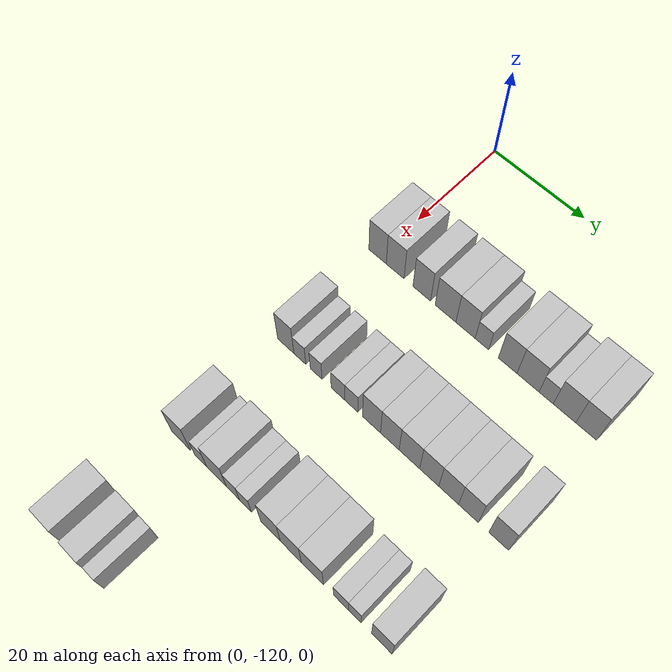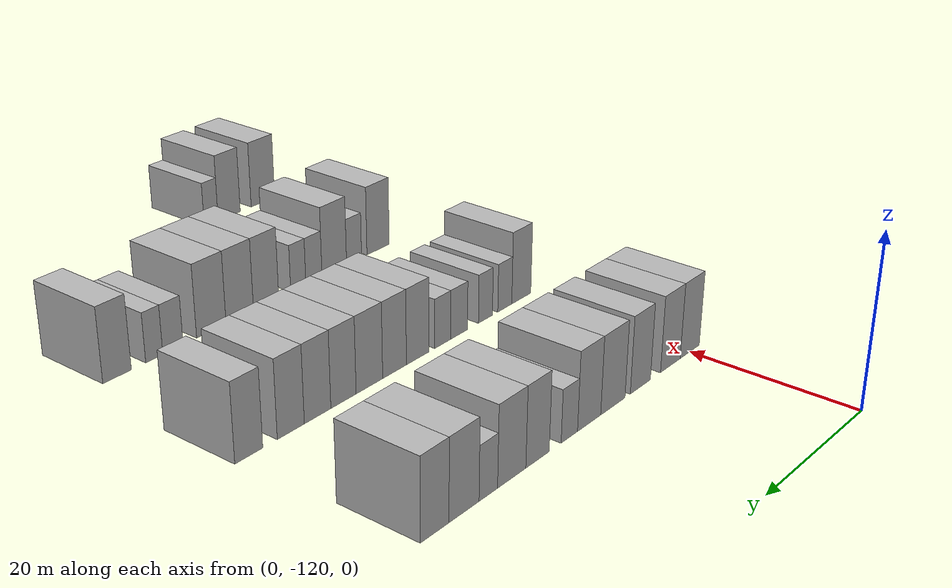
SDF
<sdf version="1.6">
 <world name="default">
  <model name="building_69">
   <static>1</static>
   <pose>25.0000 -119.9293 0 0.000000 0.000000 0.000000</pose>
   <link name="link">
    <pose>0 0 4.50 0 0 0</pose>
    <collision name="collision"><geometry><box><size>10.0000 4.0028 9.0000</size></box></geometry></collision>
    <visual name="visual">
     <cast_shadows>0</cast_shadows>
     <geometry><box><size>10.0000 4.0028 9.0000</size></box></geometry>
     <material>
      <script>
       <uri>model://HANNAS_wall/materials/scripts</uri>
       <uri>model://HANNAS_wall/materials/textures</uri>
       <name>vrc/HANNAS_wall</name>
      </script>
     </material>
    </visual>
   </link>
  </model>
  <model name="building_70">
   <static>1</static>
   <pose>25.0000 -115.9255 0 0.000000 0.000000 0.000000</pose>
   <link name="link">
    <pose>0 0 4.50 0 0 0</pose>
    <collision name="collision"><geometry><box><size>10.0000 4.0048 9.0000</size></box></geometry></collision>
    <visual name="visual">
     <cast_shadows>0</cast_shadows>
     <geometry><box><size>10.0000 4.0048 9.0000</size></box></geometry>
     <material>
      <script>
       <uri>model://HANNAS_wall/materials/scripts</uri>
       <uri>model://HANNAS_wall/materials/textures</uri>
       <name>vrc/HANNAS_wall</name>
      </script>
     </material>
    </visual>
   </link>
  </model>
  <model name="building_71">
   <static>1</static>
   <pose>25.0000 -109.9842 0 0.000000 0.000000 0.000000</pose>
   <link name="link">
    <pose>0 0 4.50 0 0 0</pose>
    <collision name="collision"><geometry><box><size>10.0000 3.8778 9.0000</size></box></geometry></collision>
    <visual name="visual">
     <cast_shadows>0</cast_shadows>
     <geometry><box><size>10.0000 3.8778 9.0000</size></box></geometry>
     <material>
      <script>
       <uri>model://HANNAS_wall/materials/scripts</uri>
       <uri>model://HANNAS_wall/materials/textures</uri>
       <name>vrc/HANNAS_wall</name>
      </script>
     </material>
    </visual>
   </link>
  </model>
  <model name="building_72">
   <static>1</static>
   <pose>25.0000 -104.8020 0 0.000000 0.000000 0.000000</pose>
   <link name="link">
    <pose>0 0 4.50 0 0 0</pose>
    <collision name="collision"><geometry><box><size>10.0000 4.4866 9.0000</size></box></geometry></collision>
    <visual name="visual">
     <cast_shadows>0</cast_shadows>
     <geometry><box><size>10.0000 4.4866 9.0000</size></box></geometry>
     <material>
      <script>
       <uri>model://HANNAS_wall/materials/scripts</uri>
       <uri>model://HANNAS_wall/materials/textures</uri>
       <name>vrc/HANNAS_wall</name>
      </script>
     </material>
    </visual>
   </link>
  </model>
  <model name="building_73">
   <static>1</static>
   <pose>25.0000 -100.5021 0 0.000000 0.000000 0.000000</pose>
   <link name="link">
    <pose>0 0 4.50 0 0 0</pose>
    <collision name="collision"><geometry><box><size>10.0000 4.1132 9.0000</size></box></geometry></collision>
    <visual name="visual">
     <cast_shadows>0</cast_shadows>
     <geometry><box><size>10.0000 4.1132 9.0000</size></box></geometry>
     <material>
      <script>
       <uri>model://HANNAS_wall/materials/scripts</uri>
       <uri>model://HANNAS_wall/materials/textures</uri>
       <name>vrc/HANNAS_wall</name>
      </script>
     </material>
    </visual>
   </link>
  </model>
  <model name="building_74">
   <static>1</static>
   <pose>25.0000 -97.0339 0 0.000000 0.000000 0.000000</pose>
   <link name="link">
    <pose>0 0 3.00 0 0 0</pose>
    <collision name="collision"><geometry><box><size>10.0000 2.8233 6.0000</size></box></geometry></collision>
    <visual name="visual">
     <cast_shadows>0</cast_shadows>
     <geometry><box><size>10.0000 2.8233 6.0000</size></box></geometry>
     <material>
      <script>
       <uri>model://HANNAS_wall/materials/scripts</uri>
       <uri>model://HANNAS_wall/materials/textures</uri>
       <name>vrc/HANNAS_wall</name>
      </script>
     </material>
    </visual>
   </link>
  </model>
  <model name="building_75">
   <static>1</static>
   <pose>25.0000 -91.7077 0 0.000000 0.000000 0.000000</pose>
   <link name="link">
    <pose>0 0 4.50 0 0 0</pose>
    <collision name="collision"><geometry><box><size>10.0000 3.8291 9.0000</size></box></geometry></collision>
    <visual name="visual">
     <cast_shadows>0</cast_shadows>
     <geometry><box><size>10.0000 3.8291 9.0000</size></box></geometry>
     <material>
      <script>
       <uri>model://HANNAS_wall/materials/scripts</uri>
       <uri>model://HANNAS_wall/materials/textures</uri>
       <name>vrc/HANNAS_wall</name>
      </script>
     </material>
    </visual>
   </link>
  </model>
  <model name="building_76">
   <static>1</static>
   <pose>25.0000 -87.5703 0 0.000000 0.000000 0.000000</pose>
   <link name="link">
    <pose>0 0 4.50 0 0 0</pose>
    <collision name="collision"><geometry><box><size>10.0000 4.4456 9.0000</size></box></geometry></collision>
    <visual name="visual">
     <cast_shadows>0</cast_shadows>
     <geometry><box><size>10.0000 4.4456 9.0000</size></box></geometry>
     <material>
      <script>
       <uri>model://HANNAS_wall/materials/scripts</uri>
       <uri>model://HANNAS_wall/materials/textures</uri>
       <name>vrc/HANNAS_wall</name>
      </script>
     </material>
    </visual>
   </link>
  </model>
  <model name="building_77">
   <static>1</static>
   <pose>25.0000 -83.9391 0 0.000000 0.000000 0.000000</pose>
   <link name="link">
    <pose>0 0 3.00 0 0 0</pose>
    <collision name="collision"><geometry><box><size>10.0000 2.8168 6.0000</size></box></geometry></collision>
    <visual name="visual">
     <cast_shadows>0</cast_shadows>
     <geometry><box><size>10.0000 2.8168 6.0000</size></box></geometry>
     <material>
      <script>
       <uri>model://HANNAS_wall/materials/scripts</uri>
       <uri>model://HANNAS_wall/materials/textures</uri>
       <name>vrc/HANNAS_wall</name>
      </script>
     </material>
    </visual>
   </link>
  </model>
  <model name="building_78">
   <static>1</static>
   <pose>25.0000 -80.3285 0 0.000000 0.000000 0.000000</pose>
   <link name="link">
    <pose>0 0 4.50 0 0 0</pose>
    <collision name="collision"><geometry><box><size>10.0000 4.4043 9.0000</size></box></geometry></collision>
    <visual name="visual">
     <cast_shadows>0</cast_shadows>
     <geometry><box><size>10.0000 4.4043 9.0000</size></box></geometry>
     <material>
      <script>
       <uri>model://HANNAS_wall/materials/scripts</uri>
       <uri>model://HANNAS_wall/materials/textures</uri>
       <name>vrc/HANNAS_wall</name>
      </script>
     </material>
    </visual>
   </link>
  </model>
  <model name="building_79">
   <static>1</static>
   <pose>25.0000 -76.1174 0 0.000000 0.000000 0.000000</pose>
   <link name="link">
    <pose>0 0 4.50 0 0 0</pose>
    <collision name="collision"><geometry><box><size>10.0000 4.0180 9.0000</size></box></geometry></collision>
    <visual name="visual">
     <cast_shadows>0</cast_shadows>
     <geometry><box><size>10.0000 4.0180 9.0000</size></box></geometry>
     <material>
      <script>
       <uri>model://HANNAS_wall/materials/scripts</uri>
       <uri>model://HANNAS_wall/materials/textures</uri>
       <name>vrc/HANNAS_wall</name>
      </script>
     </material>
    </visual>
   </link>
  </model>
  <model name="building_253">
   <static>1</static>
   <pose>47.0000 -118.9703 0 0.000000 0.000000 0.000000</pose>
   <link name="link">
    <pose>0 0 4.50 0 0 0</pose>
    <collision name="collision"><geometry><box><size>10.0000 3.7164 9.0000</size></box></geometry></collision>
    <visual name="visual">
     <cast_shadows>0</cast_shadows>
     <geometry><box><size>10.0000 3.7164 9.0000</size></box></geometry>
     <material>
      <script>
       <uri>model://HANNAS_wall/materials/scripts</uri>
       <uri>model://HANNAS_wall/materials/textures</uri>
       <name>vrc/HANNAS_wall</name>
      </script>
     </material>
    </visual>
   </link>
  </model>
  <model name="building_254">
   <static>1</static>
   <pose>47.0000 -115.7738 0 0.000000 0.000000 0.000000</pose>
   <link name="link">
    <pose>0 0 3.00 0 0 0</pose>
    <collision name="collision"><geometry><box><size>10.0000 2.6766 6.0000</size></box></geometry></collision>
    <visual name="visual">
     <cast_shadows>0</cast_shadows>
     <geometry><box><size>10.0000 2.6766 6.0000</size></box></geometry>
     <material>
      <script>
       <uri>model://HANNAS_wall/materials/scripts</uri>
       <uri>model://HANNAS_wall/materials/textures</uri>
       <name>vrc/HANNAS_wall</name>
      </script>
     </material>
    </visual>
   </link>
  </model>
  <model name="building_255">
   <static>1</static>
   <pose>47.0000 -112.1340 0 0.000000 0.000000 0.000000</pose>
   <link name="link">
    <pose>0 0 3.00 0 0 0</pose>
    <collision name="collision"><geometry><box><size>10.0000 2.6032 6.0000</size></box></geometry></collision>
    <visual name="visual">
     <cast_shadows>0</cast_shadows>
     <geometry><box><size>10.0000 2.6032 6.0000</size></box></geometry>
     <material>
      <script>
       <uri>model://HANNAS_wall/materials/scripts</uri>
       <uri>model://HANNAS_wall/materials/textures</uri>
       <name>vrc/HANNAS_wall</name>
      </script>
     </material>
    </visual>
   </link>
  </model>
  <model name="building_256">
   <static>1</static>
   <pose>47.0000 -107.3387 0 0.000000 0.000000 0.000000</pose>
   <link name="link">
    <pose>0 0 3.00 0 0 0</pose>
    <collision name="collision"><geometry><box><size>10.0000 2.9873 6.0000</size></box></geometry></collision>
    <visual name="visual">
     <cast_shadows>0</cast_shadows>
     <geometry><box><size>10.0000 2.9873 6.0000</size></box></geometry>
     <material>
      <script>
       <uri>model://HANNAS_wall/materials/scripts</uri>
       <uri>model://HANNAS_wall/materials/textures</uri>
       <name>vrc/HANNAS_wall</name>
      </script>
     </material>
    </visual>
   </link>
  </model>
  <model name="building_257">
   <static>1</static>
   <pose>47.0000 -104.4470 0 0.000000 0.000000 0.000000</pose>
   <link name="link">
    <pose>0 0 3.00 0 0 0</pose>
    <collision name="collision"><geometry><box><size>10.0000 2.7962 6.0000</size></box></geometry></collision>
    <visual name="visual">
     <cast_shadows>0</cast_shadows>
     <geometry><box><size>10.0000 2.7962 6.0000</size></box></geometry>
     <material>
      <script>
       <uri>model://HANNAS_wall/materials/scripts</uri>
       <uri>model://HANNAS_wall/materials/textures</uri>
       <name>vrc/HANNAS_wall</name>
      </script>
     </material>
    </visual>
   </link>
  </model>
  <model name="building_258">
   <static>1</static>
   <pose>47.0000 -100.1510 0 0.000000 0.000000 0.000000</pose>
   <link name="link">
    <pose>0 0 4.50 0 0 0</pose>
    <collision name="collision"><geometry><box><size>10.0000 3.7957 9.0000</size></box></geometry></collision>
    <visual name="visual">
     <cast_shadows>0</cast_shadows>
     <geometry><box><size>10.0000 3.7957 9.0000</size></box></geometry>
     <material>
      <script>
       <uri>model://HANNAS_wall/materials/scripts</uri>
       <uri>model://HANNAS_wall/materials/textures</uri>
       <name>vrc/HANNAS_wall</name>
      </script>
     </material>
    </visual>
   </link>
  </model>
  <model name="building_259">
   <static>1</static>
   <pose>47.0000 -96.3190 0 0.000000 0.000000 0.000000</pose>
   <link name="link">
    <pose>0 0 4.50 0 0 0</pose>
    <collision name="collision"><geometry><box><size>10.0000 3.8684 9.0000</size></box></geometry></collision>
    <visual name="visual">
     <cast_shadows>0</cast_shadows>
     <geometry><box><size>10.0000 3.8684 9.0000</size></box></geometry>
     <material>
      <script>
       <uri>model://HANNAS_wall/materials/scripts</uri>
       <uri>model://HANNAS_wall/materials/textures</uri>
       <name>vrc/HANNAS_wall</name>
      </script>
     </material>
    </visual>
   </link>
  </model>
  <model name="building_260">
   <static>1</static>
   <pose>47.0000 -92.2945 0 0.000000 0.000000 0.000000</pose>
   <link name="link">
    <pose>0 0 4.50 0 0 0</pose>
    <collision name="collision"><geometry><box><size>10.0000 4.1805 9.0000</size></box></geometry></collision>
    <visual name="visual">
     <cast_shadows>0</cast_shadows>
     <geometry><box><size>10.0000 4.1805 9.0000</size></box></geometry>
     <material>
      <script>
       <uri>model://HANNAS_wall/materials/scripts</uri>
       <uri>model://HANNAS_wall/materials/textures</uri>
       <name>vrc/HANNAS_wall</name>
      </script>
     </material>
    </visual>
   </link>
  </model>
  <model name="building_261">
   <static>1</static>
   <pose>47.0000 -88.2812 0 0.000000 0.000000 0.000000</pose>
   <link name="link">
    <pose>0 0 4.50 0 0 0</pose>
    <collision name="collision"><geometry><box><size>10.0000 3.8461 9.0000</size></box></geometry></collision>
    <visual name="visual">
     <cast_shadows>0</cast_shadows>
     <geometry><box><size>10.0000 3.8461 9.0000</size></box></geometry>
     <material>
      <script>
       <uri>model://HANNAS_wall/materials/scripts</uri>
       <uri>model://HANNAS_wall/materials/textures</uri>
       <name>vrc/HANNAS_wall</name>
      </script>
     </material>
    </visual>
   </link>
  </model>
  <model name="building_262">
   <static>1</static>
   <pose>47.0000 -84.4106 0 0.000000 0.000000 0.000000</pose>
   <link name="link">
    <pose>0 0 4.50 0 0 0</pose>
    <collision name="collision"><geometry><box><size>10.0000 3.8952 9.0000</size></box></geometry></collision>
    <visual name="visual">
     <cast_shadows>0</cast_shadows>
     <geometry><box><size>10.0000 3.8952 9.0000</size></box></geometry>
     <material>
      <script>
       <uri>model://HANNAS_wall/materials/scripts</uri>
       <uri>model://HANNAS_wall/materials/textures</uri>
       <name>vrc/HANNAS_wall</name>
      </script>
     </material>
    </visual>
   </link>
  </model>
  <model name="building_263">
   <static>1</static>
   <pose>47.0000 -80.5440 0 0.000000 0.000000 0.000000</pose>
   <link name="link">
    <pose>0 0 4.50 0 0 0</pose>
    <collision name="collision"><geometry><box><size>10.0000 3.8381 9.0000</size></box></geometry></collision>
    <visual name="visual">
     <cast_shadows>0</cast_shadows>
     <geometry><box><size>10.0000 3.8381 9.0000</size></box></geometry>
     <material>
      <script>
       <uri>model://HANNAS_wall/materials/scripts</uri>
       <uri>model://HANNAS_wall/materials/textures</uri>
       <name>vrc/HANNAS_wall</name>
      </script>
     </material>
    </visual>
   </link>
  </model>
  <model name="building_264">
   <static>1</static>
   <pose>47.0000 -74.7407 0 0.000000 0.000000 0.000000</pose>
   <link name="link">
    <pose>0 0 4.50 0 0 0</pose>
    <collision name="collision"><geometry><box><size>10.0000 3.7683 9.0000</size></box></geometry></collision>
    <visual name="visual">
     <cast_shadows>0</cast_shadows>
     <geometry><box><size>10.0000 3.7683 9.0000</size></box></geometry>
     <material>
      <script>
       <uri>model://HANNAS_wall/materials/scripts</uri>
       <uri>model://HANNAS_wall/materials/textures</uri>
       <name>vrc/HANNAS_wall</name>
      </script>
     </material>
    </visual>
   </link>
  </model>
  <model name="building_449">
   <static>1</static>
   <pose>69.0000 -118.8570 0 0.000000 0.000000 0.000000</pose>
   <link name="link">
    <pose>0 0 4.50 0 0 0</pose>
    <collision name="collision"><geometry><box><size>10.0000 4.1951 9.0000</size></box></geometry></collision>
    <visual name="visual">
     <cast_shadows>0</cast_shadows>
     <geometry><box><size>10.0000 4.1951 9.0000</size></box></geometry>
     <material>
      <script>
       <uri>model://HANNAS_wall/materials/scripts</uri>
       <uri>model://HANNAS_wall/materials/textures</uri>
       <name>vrc/HANNAS_wall</name>
      </script>
     </material>
    </visual>
   </link>
  </model>
  <model name="building_450">
   <static>1</static>
   <pose>69.0000 -114.3896 0 0.000000 0.000000 0.000000</pose>
   <link name="link">
    <pose>0 0 3.00 0 0 0</pose>
    <collision name="collision"><geometry><box><size>10.0000 2.7396 6.0000</size></box></geometry></collision>
    <visual name="visual">
     <cast_shadows>0</cast_shadows>
     <geometry><box><size>10.0000 2.7396 6.0000</size></box></geometry>
     <material>
      <script>
       <uri>model://HANNAS_wall/materials/scripts</uri>
       <uri>model://HANNAS_wall/materials/textures</uri>
       <name>vrc/HANNAS_wall</name>
      </script>
     </material>
    </visual>
   </link>
  </model>
  <model name="building_451">
   <static>1</static>
   <pose>69.0000 -110.8301 0 0.000000 0.000000 0.000000</pose>
   <link name="link">
    <pose>0 0 4.50 0 0 0</pose>
    <collision name="collision"><geometry><box><size>10.0000 4.3794 9.0000</size></box></geometry></collision>
    <visual name="visual">
     <cast_shadows>0</cast_shadows>
     <geometry><box><size>10.0000 4.3794 9.0000</size></box></geometry>
     <material>
      <script>
       <uri>model://HANNAS_wall/materials/scripts</uri>
       <uri>model://HANNAS_wall/materials/textures</uri>
       <name>vrc/HANNAS_wall</name>
      </script>
     </material>
    </visual>
   </link>
  </model>
  <model name="building_452">
   <static>1</static>
   <pose>69.0000 -107.2457 0 0.000000 0.000000 0.000000</pose>
   <link name="link">
    <pose>0 0 3.00 0 0 0</pose>
    <collision name="collision"><geometry><box><size>10.0000 2.7895 6.0000</size></box></geometry></collision>
    <visual name="visual">
     <cast_shadows>0</cast_shadows>
     <geometry><box><size>10.0000 2.7895 6.0000</size></box></geometry>
     <material>
      <script>
       <uri>model://HANNAS_wall/materials/scripts</uri>
       <uri>model://HANNAS_wall/materials/textures</uri>
       <name>vrc/HANNAS_wall</name>
      </script>
     </material>
    </visual>
   </link>
  </model>
  <model name="building_453">
   <static>1</static>
   <pose>69.0000 -104.5624 0 0.000000 0.000000 0.000000</pose>
   <link name="link">
    <pose>0 0 3.00 0 0 0</pose>
    <collision name="collision"><geometry><box><size>10.0000 2.5770 6.0000</size></box></geometry></collision>
    <visual name="visual">
     <cast_shadows>0</cast_shadows>
     <geometry><box><size>10.0000 2.5770 6.0000</size></box></geometry>
     <material>
      <script>
       <uri>model://HANNAS_wall/materials/scripts</uri>
       <uri>model://HANNAS_wall/materials/textures</uri>
       <name>vrc/HANNAS_wall</name>
      </script>
     </material>
    </visual>
   </link>
  </model>
  <model name="building_454">
   <static>1</static>
   <pose>69.0000 -99.2176 0 0.000000 0.000000 0.000000</pose>
   <link name="link">
    <pose>0 0 4.50 0 0 0</pose>
    <collision name="collision"><geometry><box><size>10.0000 4.1126 9.0000</size></box></geometry></collision>
    <visual name="visual">
     <cast_shadows>0</cast_shadows>
     <geometry><box><size>10.0000 4.1126 9.0000</size></box></geometry>
     <material>
      <script>
       <uri>model://HANNAS_wall/materials/scripts</uri>
       <uri>model://HANNAS_wall/materials/textures</uri>
       <name>vrc/HANNAS_wall</name>
      </script>
     </material>
    </visual>
   </link>
  </model>
  <model name="building_455">
   <static>1</static>
   <pose>69.0000 -94.9979 0 0.000000 0.000000 0.000000</pose>
   <link name="link">
    <pose>0 0 4.50 0 0 0</pose>
    <collision name="collision"><geometry><box><size>10.0000 4.3268 9.0000</size></box></geometry></collision>
    <visual name="visual">
     <cast_shadows>0</cast_shadows>
     <geometry><box><size>10.0000 4.3268 9.0000</size></box></geometry>
     <material>
      <script>
       <uri>model://HANNAS_wall/materials/scripts</uri>
       <uri>model://HANNAS_wall/materials/textures</uri>
       <name>vrc/HANNAS_wall</name>
      </script>
     </material>
    </visual>
   </link>
  </model>
  <model name="building_456">
   <static>1</static>
   <pose>69.0000 -90.5957 0 0.000000 0.000000 0.000000</pose>
   <link name="link">
    <pose>0 0 4.50 0 0 0</pose>
    <collision name="collision"><geometry><box><size>10.0000 4.4777 9.0000</size></box></geometry></collision>
    <visual name="visual">
     <cast_shadows>0</cast_shadows>
     <geometry><box><size>10.0000 4.4777 9.0000</size></box></geometry>
     <material>
      <script>
       <uri>model://HANNAS_wall/materials/scripts</uri>
       <uri>model://HANNAS_wall/materials/textures</uri>
       <name>vrc/HANNAS_wall</name>
      </script>
     </material>
    </visual>
   </link>
  </model>
  <model name="building_457">
   <static>1</static>
   <pose>69.0000 -84.8846 0 0.000000 0.000000 0.000000</pose>
   <link name="link">
    <pose>0 0 3.00 0 0 0</pose>
    <collision name="collision"><geometry><box><size>10.0000 2.9444 6.0000</size></box></geometry></collision>
    <visual name="visual">
     <cast_shadows>0</cast_shadows>
     <geometry><box><size>10.0000 2.9444 6.0000</size></box></geometry>
     <material>
      <script>
       <uri>model://HANNAS_wall/materials/scripts</uri>
       <uri>model://HANNAS_wall/materials/textures</uri>
       <name>vrc/HANNAS_wall</name>
      </script>
     </material>
    </visual>
   </link>
  </model>
  <model name="building_458">
   <static>1</static>
   <pose>69.0000 -82.1966 0 0.000000 0.000000 0.000000</pose>
   <link name="link">
    <pose>0 0 3.00 0 0 0</pose>
    <collision name="collision"><geometry><box><size>10.0000 2.4316 6.0000</size></box></geometry></collision>
    <visual name="visual">
     <cast_shadows>0</cast_shadows>
     <geometry><box><size>10.0000 2.4316 6.0000</size></box></geometry>
     <material>
      <script>
       <uri>model://HANNAS_wall/materials/scripts</uri>
       <uri>model://HANNAS_wall/materials/textures</uri>
       <name>vrc/HANNAS_wall</name>
      </script>
     </material>
    </visual>
   </link>
  </model>
  <model name="building_459">
   <static>1</static>
   <pose>69.0000 -77.0387 0 0.000000 0.000000 0.000000</pose>
   <link name="link">
    <pose>0 0 4.50 0 0 0</pose>
    <collision name="collision"><geometry><box><size>10.0000 3.8842 9.0000</size></box></geometry></collision>
    <visual name="visual">
     <cast_shadows>0</cast_shadows>
     <geometry><box><size>10.0000 3.8842 9.0000</size></box></geometry>
     <material>
      <script>
       <uri>model://HANNAS_wall/materials/scripts</uri>
       <uri>model://HANNAS_wall/materials/textures</uri>
       <name>vrc/HANNAS_wall</name>
      </script>
     </material>
    </visual>
   </link>
  </model>
  <model name="building_631">
   <static>1</static>
   <pose>91.0000 -120.7349 0 0.000000 0.000000 0.000000</pose>
   <link name="link">
    <pose>0 0 4.50 0 0 0</pose>
    <collision name="collision"><geometry><box><size>10.0000 4.4102 9.0000</size></box></geometry></collision>
    <visual name="visual">
     <cast_shadows>0</cast_shadows>
     <geometry><box><size>10.0000 4.4102 9.0000</size></box></geometry>
     <material>
      <script>
       <uri>model://HANNAS_wall/materials/scripts</uri>
       <uri>model://HANNAS_wall/materials/textures</uri>
       <name>vrc/HANNAS_wall</name>
      </script>
     </material>
    </visual>
   </link>
  </model>
  <model name="building_632">
   <static>1</static>
   <pose>91.0000 -114.5440 0 0.000000 0.000000 0.000000</pose>
   <link name="link">
    <pose>0 0 4.50 0 0 0</pose>
    <collision name="collision"><geometry><box><size>10.0000 3.9716 9.0000</size></box></geometry></collision>
    <visual name="visual">
     <cast_shadows>0</cast_shadows>
     <geometry><box><size>10.0000 3.9716 9.0000</size></box></geometry>
     <material>
      <script>
       <uri>model://HANNAS_wall/materials/scripts</uri>
       <uri>model://HANNAS_wall/materials/textures</uri>
       <name>vrc/HANNAS_wall</name>
      </script>
     </material>
    </visual>
   </link>
  </model>
  <model name="building_633">
   <static>1</static>
   <pose>91.0000 -111.3325 0 0.000000 0.000000 0.000000</pose>
   <link name="link">
    <pose>0 0 3.00 0 0 0</pose>
    <collision name="collision"><geometry><box><size>10.0000 2.4515 6.0000</size></box></geometry></collision>
    <visual name="visual">
     <cast_shadows>0</cast_shadows>
     <geometry><box><size>10.0000 2.4515 6.0000</size></box></geometry>
     <material>
      <script>
       <uri>model://HANNAS_wall/materials/scripts</uri>
       <uri>model://HANNAS_wall/materials/textures</uri>
       <name>vrc/HANNAS_wall</name>
      </script>
     </material>
    </visual>
   </link>
  </model>
 </world>
</sdf>
